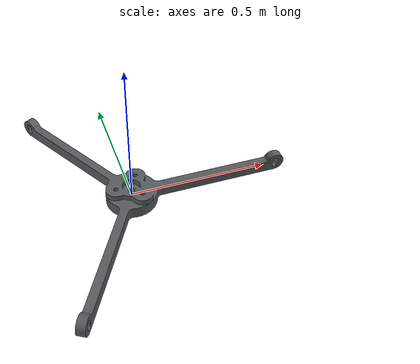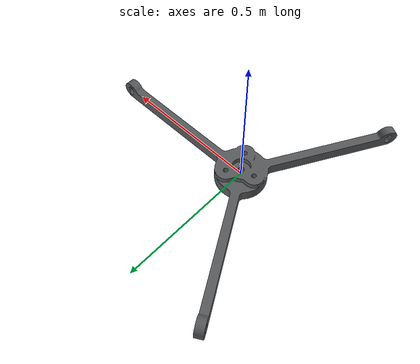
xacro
<?xml version="1.0" ?>
<robot name="xpider_step" xmlns:xacro="http://ros.org/wiki/xacro">
<xacro:include filename="$(find xpider_resources)/urdf/common_materials.xacro"/>
<xacro:include filename="$(find xpider_resources)/urdf/common_constants.xacro"/>

    <link name="step">
    <visual>
      <origin xyz="0 0 -${height_step/2}" rpy="${m_pi_2} 0 ${m_pi_3}"/>
      <geometry>
        <mesh filename="package://xpider_descriptions/meshes/step.stl" scale="${ratio_stl} ${ratio_stl} ${ratio_stl}"/>
      </geometry>
      <xacro:material_xpider_grey />
      </visual>
      <collision>
        <origin xyz="0 0 -${height_step/2}" rpy="${m_pi_2} 0 ${m_pi_3}"/>
        <geometry>
          <mesh filename="package://xpider_descriptions/meshes/step.stl" scale="${ratio_stl} ${ratio_stl} ${ratio_stl}"/>
        </geometry>
      </collision>
    </link>
</robot>

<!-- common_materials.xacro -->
<robot xmlns:xacro="http://ros.org/wiki/xacro">
  <xacro:include filename="$(find xpider_resources)/urdf/common_colours.xacro"/>

  <xacro:macro name="material_xpider_yellow">
    <material name="">
      <color rgba="${color_xpider_yellow}"/>
    </material>
  </xacro:macro>

  <xacro:macro name="material_xpider_white">
    <material name="">
      <color rgba="${color_xpider_white}"/>
    </material>
  </xacro:macro>

  <xacro:macro name="material_xpider_black">
    <material name="">
      <color rgba="${color_xpider_black}"/>
    </material>
  </xacro:macro>

  <xacro:macro name="material_xpider_grey">
    <material name="">
      <color rgba="${color_xpider_grey}"/>
    </material>
  </xacro:macro>

  <xacro:macro name="material_xpider_greyish">
    <material name="">
      <color rgba="${color_xpider_greyish}"/>
    </material>
  </xacro:macro>

</robot>

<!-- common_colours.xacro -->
<robot xmlns:xacro="http://ros.org/wiki/xacro">

  <!-- RAL 1021 -->
  <xacro:property name="color_xpider_yellow"   value="0.96 0.76 0.13 1.0" />
  <!-- RAL 9002 -->
  <xacro:property name="color_xpider_white"    value="0.86 0.85 0.81 1.0" />
  <!-- RAL 7024 -->
  <xacro:property name="color_xpider_grey"     value="0.34 0.35 0.36 1.0" />

  <!-- approximations -->
  <xacro:property name="color_xpider_black"    value="0.15 0.15 0.15 1.0" />
  <xacro:property name="color_xpider_greyish"  value="0.75 0.75 0.75 1.0" />

</robot>

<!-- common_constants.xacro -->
<robot xmlns:xacro="http://ros.org/wiki/xacro">

  <!-- Pi, the ratio of a circle's circumference to its diameter -->
  <xacro:property name="m_pi" value="3.1415926535" />
  <!-- Pi divided by two -->
  <xacro:property name="m_pi_2" value="1.570796327" />
  <!-- 3Pi divided by two -->
  <xacro:property name="m_3_pi_2" value="2.35619449" />
  <!-- 3Pi divided by two -->
  <xacro:property name="m_2_pi_3" value="2.09439510239" />
  <!-- Pi divided by four -->
  <xacro:property name="m_pi_4" value="0.785398163" />
  <!-- Pi divided by three -->
  <xacro:property name="m_pi_3" value="1.0471975512" />
  <!-- Pi divided by six -->
  <xacro:property name="m_pi_6" value="0.52359877559" />

  <xacro:property name="cos_m_2_pi_3" value="-0.5" />
  <xacro:property name="sin_m_2_pi_3" value="0.86602540378" />
  <xacro:property name="cos_m_4_pi_3" value="-0.5" />
  <xacro:property name="sin_m_4_pi_3" value="-0.86602540378" />

  <xacro:property name="ratio_stl" value="0.01006046568"/>

  <xacro:property name="height_base" value="0.53"/>
  <xacro:property name="height_step" value="0.04"/>
  <xacro:property name="base_link_to_step_height" value="0.27"/>
  <xacro:property name="diameter_step" value="0.5425" />

</robot>
